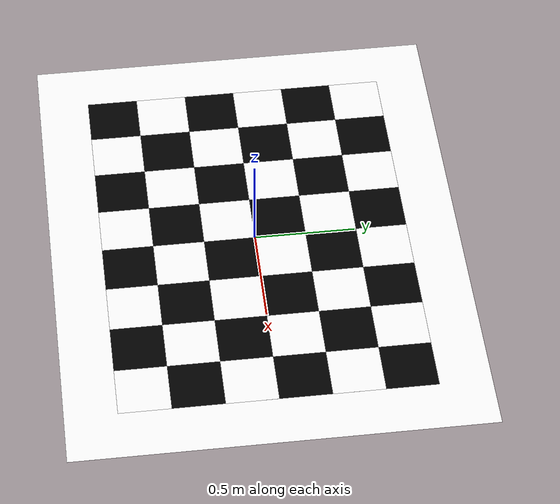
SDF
<?xml version="1.0"?>
<sdf version="1.4">
  <model name="checkerboard_8_6_0_254">
  <static>true</static>
  <link name="checkerboard_8_6_0_254_body">
      <visual name="checker_0_0">
        <pose>-0.889 -0.635 0 0 0 0</pose>
        <geometry>
          <box>
            <size>0.254 0.254 0.0002</size>
          </box>
        </geometry>
        <material>
          <ambient>0 0 0 1</ambient>
          <diffuse>0 0 0 1</diffuse>
          <specular>0 0 0 1</specular>
          <emissive>0 0 0 1</emissive>
        </material>
      </visual>
      <visual name="checker_0_1">
        <pose>-0.889 -0.381 0 0 0 0</pose>
        <geometry>
          <box>
            <size>0.254 0.254 0.0002</size>
          </box>
        </geometry>
        <material>
          <ambient>1 1 1 1</ambient>
          <diffuse>1 1 1 1</diffuse>
          <specular>1 1 1 1</specular>
          <emissive>1 1 1 1</emissive>
        </material>
      </visual>
      <visual name="checker_0_2">
        <pose>-0.889 -0.127 0 0 0 0</pose>
        <geometry>
          <box>
            <size>0.254 0.254 0.0002</size>
          </box>
        </geometry>
        <material>
          <ambient>0 0 0 1</ambient>
          <diffuse>0 0 0 1</diffuse>
          <specular>0 0 0 1</specular>
          <emissive>0 0 0 1</emissive>
        </material>
      </visual>
      <visual name="checker_0_3">
        <pose>-0.889 0.127 0 0 0 0</pose>
        <geometry>
          <box>
            <size>0.254 0.254 0.0002</size>
          </box>
        </geometry>
        <material>
          <ambient>1 1 1 1</ambient>
          <diffuse>1 1 1 1</diffuse>
          <specular>1 1 1 1</specular>
          <emissive>1 1 1 1</emissive>
        </material>
      </visual>
      <visual name="checker_0_4">
        <pose>-0.889 0.381 0 0 0 0</pose>
        <geometry>
          <box>
            <size>0.254 0.254 0.0002</size>
          </box>
        </geometry>
        <material>
          <ambient>0 0 0 1</ambient>
          <diffuse>0 0 0 1</diffuse>
          <specular>0 0 0 1</specular>
          <emissive>0 0 0 1</emissive>
        </material>
      </visual>
      <visual name="checker_0_5">
        <pose>-0.889 0.635 0 0 0 0</pose>
        <geometry>
          <box>
            <size>0.254 0.254 0.0002</size>
          </box>
        </geometry>
        <material>
          <ambient>1 1 1 1</ambient>
          <diffuse>1 1 1 1</diffuse>
          <specular>1 1 1 1</specular>
          <emissive>1 1 1 1</emissive>
        </material>
      </visual>
      <visual name="checker_1_0">
        <pose>-0.635 -0.635 0 0 0 0</pose>
        <geometry>
          <box>
            <size>0.254 0.254 0.0002</size>
          </box>
        </geometry>
        <material>
          <ambient>1 1 1 1</ambient>
          <diffuse>1 1 1 1</diffuse>
          <specular>1 1 1 1</specular>
          <emissive>1 1 1 1</emissive>
        </material>
      </visual>
      <visual name="checker_1_1">
        <pose>-0.635 -0.381 0 0 0 0</pose>
        <geometry>
          <box>
            <size>0.254 0.254 0.0002</size>
          </box>
        </geometry>
        <material>
          <ambient>0 0 0 1</ambient>
          <diffuse>0 0 0 1</diffuse>
          <specular>0 0 0 1</specular>
          <emissive>0 0 0 1</emissive>
        </material>
      </visual>
      <visual name="checker_1_2">
        <pose>-0.635 -0.127 0 0 0 0</pose>
        <geometry>
          <box>
            <size>0.254 0.254 0.0002</size>
          </box>
        </geometry>
        <material>
          <ambient>1 1 1 1</ambient>
          <diffuse>1 1 1 1</diffuse>
          <specular>1 1 1 1</specular>
          <emissive>1 1 1 1</emissive>
        </material>
      </visual>
      <visual name="checker_1_3">
        <pose>-0.635 0.127 0 0 0 0</pose>
        <geometry>
          <box>
            <size>0.254 0.254 0.0002</size>
          </box>
        </geometry>
        <material>
          <ambient>0 0 0 1</ambient>
          <diffuse>0 0 0 1</diffuse>
          <specular>0 0 0 1</specular>
          <emissive>0 0 0 1</emissive>
        </material>
      </visual>
      <visual name="checker_1_4">
        <pose>-0.635 0.381 0 0 0 0</pose>
        <geometry>
          <box>
            <size>0.254 0.254 0.0002</size>
          </box>
        </geometry>
        <material>
          <ambient>1 1 1 1</ambient>
          <diffuse>1 1 1 1</diffuse>
          <specular>1 1 1 1</specular>
          <emissive>1 1 1 1</emissive>
        </material>
      </visual>
      <visual name="checker_1_5">
        <pose>-0.635 0.635 0 0 0 0</pose>
        <geometry>
          <box>
            <size>0.254 0.254 0.0002</size>
          </box>
        </geometry>
        <material>
          <ambient>0 0 0 1</ambient>
          <diffuse>0 0 0 1</diffuse>
          <specular>0 0 0 1</specular>
          <emissive>0 0 0 1</emissive>
        </material>
      </visual>
      <visual name="checker_2_0">
        <pose>-0.381 -0.635 0 0 0 0</pose>
        <geometry>
          <box>
            <size>0.254 0.254 0.0002</size>
          </box>
        </geometry>
        <material>
          <ambient>0 0 0 1</ambient>
          <diffuse>0 0 0 1</diffuse>
          <specular>0 0 0 1</specular>
          <emissive>0 0 0 1</emissive>
        </material>
      </visual>
      <visual name="checker_2_1">
        <pose>-0.381 -0.381 0 0 0 0</pose>
        <geometry>
          <box>
            <size>0.254 0.254 0.0002</size>
          </box>
        </geometry>
        <material>
          <ambient>1 1 1 1</ambient>
          <diffuse>1 1 1 1</diffuse>
          <specular>1 1 1 1</specular>
          <emissive>1 1 1 1</emissive>
        </material>
      </visual>
      <visual name="checker_2_2">
        <pose>-0.381 -0.127 0 0 0 0</pose>
        <geometry>
          <box>
            <size>0.254 0.254 0.0002</size>
          </box>
        </geometry>
        <material>
          <ambient>0 0 0 1</ambient>
          <diffuse>0 0 0 1</diffuse>
          <specular>0 0 0 1</specular>
          <emissive>0 0 0 1</emissive>
        </material>
      </visual>
      <visual name="checker_2_3">
        <pose>-0.381 0.127 0 0 0 0</pose>
        <geometry>
          <box>
            <size>0.254 0.254 0.0002</size>
          </box>
        </geometry>
        <material>
          <ambient>1 1 1 1</ambient>
          <diffuse>1 1 1 1</diffuse>
          <specular>1 1 1 1</specular>
          <emissive>1 1 1 1</emissive>
        </material>
      </visual>
      <visual name="checker_2_4">
        <pose>-0.381 0.381 0 0 0 0</pose>
        <geometry>
          <box>
            <size>0.254 0.254 0.0002</size>
          </box>
        </geometry>
        <material>
          <ambient>0 0 0 1</ambient>
          <diffuse>0 0 0 1</diffuse>
          <specular>0 0 0 1</specular>
          <emissive>0 0 0 1</emissive>
        </material>
      </visual>
      <visual name="checker_2_5">
        <pose>-0.381 0.635 0 0 0 0</pose>
        <geometry>
          <box>
            <size>0.254 0.254 0.0002</size>
          </box>
        </geometry>
        <material>
          <ambient>1 1 1 1</ambient>
          <diffuse>1 1 1 1</diffuse>
          <specular>1 1 1 1</specular>
          <emissive>1 1 1 1</emissive>
        </material>
      </visual>
      <visual name="checker_3_0">
        <pose>-0.127 -0.635 0 0 0 0</pose>
        <geometry>
          <box>
            <size>0.254 0.254 0.0002</size>
          </box>
        </geometry>
        <material>
          <ambient>1 1 1 1</ambient>
          <diffuse>1 1 1 1</diffuse>
          <specular>1 1 1 1</specular>
          <emissive>1 1 1 1</emissive>
        </material>
      </visual>
      <visual name="checker_3_1">
        <pose>-0.127 -0.381 0 0 0 0</pose>
        <geometry>
          <box>
            <size>0.254 0.254 0.0002</size>
          </box>
        </geometry>
        <material>
          <ambient>0 0 0 1</ambient>
          <diffuse>0 0 0 1</diffuse>
          <specular>0 0 0 1</specular>
          <emissive>0 0 0 1</emissive>
        </material>
      </visual>
      <visual name="checker_3_2">
        <pose>-0.127 -0.127 0 0 0 0</pose>
        <geometry>
          <box>
            <size>0.254 0.254 0.0002</size>
          </box>
        </geometry>
        <material>
          <ambient>1 1 1 1</ambient>
          <diffuse>1 1 1 1</diffuse>
          <specular>1 1 1 1</specular>
          <emissive>1 1 1 1</emissive>
        </material>
      </visual>
      <visual name="checker_3_3">
        <pose>-0.127 0.127 0 0 0 0</pose>
        <geometry>
          <box>
            <size>0.254 0.254 0.0002</size>
          </box>
        </geometry>
        <material>
          <ambient>0 0 0 1</ambient>
          <diffuse>0 0 0 1</diffuse>
          <specular>0 0 0 1</specular>
          <emissive>0 0 0 1</emissive>
        </material>
      </visual>
      <visual name="checker_3_4">
        <pose>-0.127 0.381 0 0 0 0</pose>
        <geometry>
          <box>
            <size>0.254 0.254 0.0002</size>
          </box>
        </geometry>
        <material>
          <ambient>1 1 1 1</ambient>
          <diffuse>1 1 1 1</diffuse>
          <specular>1 1 1 1</specular>
          <emissive>1 1 1 1</emissive>
        </material>
      </visual>
      <visual name="checker_3_5">
        <pose>-0.127 0.635 0 0 0 0</pose>
        <geometry>
          <box>
            <size>0.254 0.254 0.0002</size>
          </box>
        </geometry>
        <material>
          <ambient>0 0 0 1</ambient>
          <diffuse>0 0 0 1</diffuse>
          <specular>0 0 0 1</specular>
          <emissive>0 0 0 1</emissive>
        </material>
      </visual>
      <visual name="checker_4_0">
        <pose>0.127 -0.635 0 0 0 0</pose>
        <geometry>
          <box>
            <size>0.254 0.254 0.0002</size>
          </box>
        </geometry>
        <material>
          <ambient>0 0 0 1</ambient>
          <diffuse>0 0 0 1</diffuse>
          <specular>0 0 0 1</specular>
          <emissive>0 0 0 1</emissive>
        </material>
      </visual>
      <visual name="checker_4_1">
        <pose>0.127 -0.381 0 0 0 0</pose>
        <geometry>
          <box>
            <size>0.254 0.254 0.0002</size>
          </box>
        </geometry>
        <material>
          <ambient>1 1 1 1</ambient>
          <diffuse>1 1 1 1</diffuse>
          <specular>1 1 1 1</specular>
          <emissive>1 1 1 1</emissive>
        </material>
      </visual>
      <visual name="checker_4_2">
        <pose>0.127 -0.127 0 0 0 0</pose>
        <geometry>
          <box>
            <size>0.254 0.254 0.0002</size>
          </box>
        </geometry>
        <material>
          <ambient>0 0 0 1</ambient>
          <diffuse>0 0 0 1</diffuse>
          <specular>0 0 0 1</specular>
          <emissive>0 0 0 1</emissive>
        </material>
      </visual>
      <visual name="checker_4_3">
        <pose>0.127 0.127 0 0 0 0</pose>
        <geometry>
          <box>
            <size>0.254 0.254 0.0002</size>
          </box>
        </geometry>
        <material>
          <ambient>1 1 1 1</ambient>
          <diffuse>1 1 1 1</diffuse>
          <specular>1 1 1 1</specular>
          <emissive>1 1 1 1</emissive>
        </material>
      </visual>
      <visual name="checker_4_4">
        <pose>0.127 0.381 0 0 0 0</pose>
        <geometry>
          <box>
            <size>0.254 0.254 0.0002</size>
          </box>
        </geometry>
        <material>
          <ambient>0 0 0 1</ambient>
          <diffuse>0 0 0 1</diffuse>
          <specular>0 0 0 1</specular>
          <emissive>0 0 0 1</emissive>
        </material>
      </visual>
      <visual name="checker_4_5">
        <pose>0.127 0.635 0 0 0 0</pose>
        <geometry>
          <box>
            <size>0.254 0.254 0.0002</size>
          </box>
        </geometry>
        <material>
          <ambient>1 1 1 1</ambient>
          <diffuse>1 1 1 1</diffuse>
          <specular>1 1 1 1</specular>
          <emissive>1 1 1 1</emissive>
        </material>
      </visual>
      <visual name="checker_5_0">
        <pose>0.381 -0.635 0 0 0 0</pose>
        <geometry>
          <box>
            <size>0.254 0.254 0.0002</size>
          </box>
        </geometry>
        <material>
          <ambient>1 1 1 1</ambient>
          <diffuse>1 1 1 1</diffuse>
          <specular>1 1 1 1</specular>
          <emissive>1 1 1 1</emissive>
        </material>
      </visual>
      <visual name="checker_5_1">
        <pose>0.381 -0.381 0 0 0 0</pose>
        <geometry>
          <box>
            <size>0.254 0.254 0.0002</size>
          </box>
        </geometry>
        <material>
          <ambient>0 0 0 1</ambient>
          <diffuse>0 0 0 1</diffuse>
          <specular>0 0 0 1</specular>
          <emissive>0 0 0 1</emissive>
        </material>
      </visual>
      <visual name="checker_5_2">
        <pose>0.381 -0.127 0 0 0 0</pose>
        <geometry>
          <box>
            <size>0.254 0.254 0.0002</size>
          </box>
        </geometry>
        <material>
          <ambient>1 1 1 1</ambient>
          <diffuse>1 1 1 1</diffuse>
          <specular>1 1 1 1</specular>
          <emissive>1 1 1 1</emissive>
        </material>
      </visual>
      <visual name="checker_5_3">
        <pose>0.381 0.127 0 0 0 0</pose>
        <geometry>
          <box>
            <size>0.254 0.254 0.0002</size>
          </box>
        </geometry>
        <material>
          <ambient>0 0 0 1</ambient>
          <diffuse>0 0 0 1</diffuse>
          <specular>0 0 0 1</specular>
          <emissive>0 0 0 1</emissive>
        </material>
      </visual>
      <visual name="checker_5_4">
        <pose>0.381 0.381 0 0 0 0</pose>
        <geometry>
          <box>
            <size>0.254 0.254 0.0002</size>
          </box>
        </geometry>
        <material>
          <ambient>1 1 1 1</ambient>
          <diffuse>1 1 1 1</diffuse>
          <specular>1 1 1 1</specular>
          <emissive>1 1 1 1</emissive>
        </material>
      </visual>
      <visual name="checker_5_5">
        <pose>0.381 0.635 0 0 0 0</pose>
        <geometry>
          <box>
            <size>0.254 0.254 0.0002</size>
          </box>
        </geometry>
        <material>
          <ambient>0 0 0 1</ambient>
          <diffuse>0 0 0 1</diffuse>
          <specular>0 0 0 1</specular>
          <emissive>0 0 0 1</emissive>
        </material>
      </visual>
      <visual name="checker_6_0">
        <pose>0.635 -0.635 0 0 0 0</pose>
        <geometry>
          <box>
            <size>0.254 0.254 0.0002</size>
          </box>
        </geometry>
        <material>
          <ambient>0 0 0 1</ambient>
          <diffuse>0 0 0 1</diffuse>
          <specular>0 0 0 1</specular>
          <emissive>0 0 0 1</emissive>
        </material>
      </visual>
      <visual name="checker_6_1">
        <pose>0.635 -0.381 0 0 0 0</pose>
        <geometry>
          <box>
            <size>0.254 0.254 0.0002</size>
          </box>
        </geometry>
        <material>
          <ambient>1 1 1 1</ambient>
          <diffuse>1 1 1 1</diffuse>
          <specular>1 1 1 1</specular>
          <emissive>1 1 1 1</emissive>
        </material>
      </visual>
      <visual name="checker_6_2">
        <pose>0.635 -0.127 0 0 0 0</pose>
        <geometry>
          <box>
            <size>0.254 0.254 0.0002</size>
          </box>
        </geometry>
        <material>
          <ambient>0 0 0 1</ambient>
          <diffuse>0 0 0 1</diffuse>
          <specular>0 0 0 1</specular>
          <emissive>0 0 0 1</emissive>
        </material>
      </visual>
      <visual name="checker_6_3">
        <pose>0.635 0.127 0 0 0 0</pose>
        <geometry>
          <box>
            <size>0.254 0.254 0.0002</size>
          </box>
        </geometry>
        <material>
          <ambient>1 1 1 1</ambient>
          <diffuse>1 1 1 1</diffuse>
          <specular>1 1 1 1</specular>
          <emissive>1 1 1 1</emissive>
        </material>
      </visual>
      <visual name="checker_6_4">
        <pose>0.635 0.381 0 0 0 0</pose>
        <geometry>
          <box>
            <size>0.254 0.254 0.0002</size>
          </box>
        </geometry>
        <material>
          <ambient>0 0 0 1</ambient>
          <diffuse>0 0 0 1</diffuse>
          <specular>0 0 0 1</specular>
          <emissive>0 0 0 1</emissive>
        </material>
      </visual>
      <visual name="checker_6_5">
        <pose>0.635 0.635 0 0 0 0</pose>
        <geometry>
          <box>
            <size>0.254 0.254 0.0002</size>
          </box>
        </geometry>
        <material>
          <ambient>1 1 1 1</ambient>
          <diffuse>1 1 1 1</diffuse>
          <specular>1 1 1 1</specular>
          <emissive>1 1 1 1</emissive>
        </material>
      </visual>
      <visual name="checker_7_0">
        <pose>0.889 -0.635 0 0 0 0</pose>
        <geometry>
          <box>
            <size>0.254 0.254 0.0002</size>
          </box>
        </geometry>
        <material>
          <ambient>1 1 1 1</ambient>
          <diffuse>1 1 1 1</diffuse>
          <specular>1 1 1 1</specular>
          <emissive>1 1 1 1</emissive>
        </material>
      </visual>
      <visual name="checker_7_1">
        <pose>0.889 -0.381 0 0 0 0</pose>
        <geometry>
          <box>
            <size>0.254 0.254 0.0002</size>
          </box>
        </geometry>
        <material>
          <ambient>0 0 0 1</ambient>
          <diffuse>0 0 0 1</diffuse>
          <specular>0 0 0 1</specular>
          <emissive>0 0 0 1</emissive>
        </material>
      </visual>
      <visual name="checker_7_2">
        <pose>0.889 -0.127 0 0 0 0</pose>
        <geometry>
          <box>
            <size>0.254 0.254 0.0002</size>
          </box>
        </geometry>
        <material>
          <ambient>1 1 1 1</ambient>
          <diffuse>1 1 1 1</diffuse>
          <specular>1 1 1 1</specular>
          <emissive>1 1 1 1</emissive>
        </material>
      </visual>
      <visual name="checker_7_3">
        <pose>0.889 0.127 0 0 0 0</pose>
        <geometry>
          <box>
            <size>0.254 0.254 0.0002</size>
          </box>
        </geometry>
        <material>
          <ambient>0 0 0 1</ambient>
          <diffuse>0 0 0 1</diffuse>
          <specular>0 0 0 1</specular>
          <emissive>0 0 0 1</emissive>
        </material>
      </visual>
      <visual name="checker_7_4">
        <pose>0.889 0.381 0 0 0 0</pose>
        <geometry>
          <box>
            <size>0.254 0.254 0.0002</size>
          </box>
        </geometry>
        <material>
          <ambient>1 1 1 1</ambient>
          <diffuse>1 1 1 1</diffuse>
          <specular>1 1 1 1</specular>
          <emissive>1 1 1 1</emissive>
        </material>
      </visual>
      <visual name="checker_7_5">
        <pose>0.889 0.635 0 0 0 0</pose>
        <geometry>
          <box>
            <size>0.254 0.254 0.0002</size>
          </box>
        </geometry>
        <material>
          <ambient>0 0 0 1</ambient>
          <diffuse>0 0 0 1</diffuse>
          <specular>0 0 0 1</specular>
          <emissive>0 0 0 1</emissive>
        </material>
      </visual>
      <visual name="checker_backdrop">
        <pose>0 0 0 0 0 0</pose>
        <geometry>
          <box>
            <size>2.54 2.032 0.0001</size>
          </box>
        </geometry>
        <material>
          <ambient>1 1 1 1</ambient>
          <diffuse>1 1 1 1</diffuse>
          <specular>1 1 1 1</specular>
          <emissive>1 1 1 1</emissive>
        </material>
      </visual>
    </link>
  </model>
</sdf>
